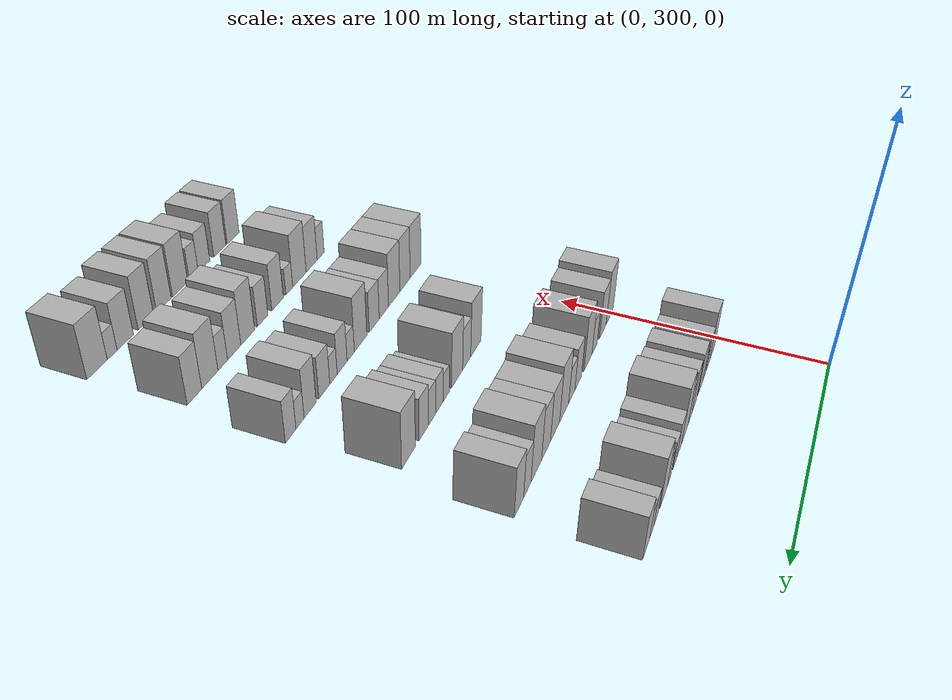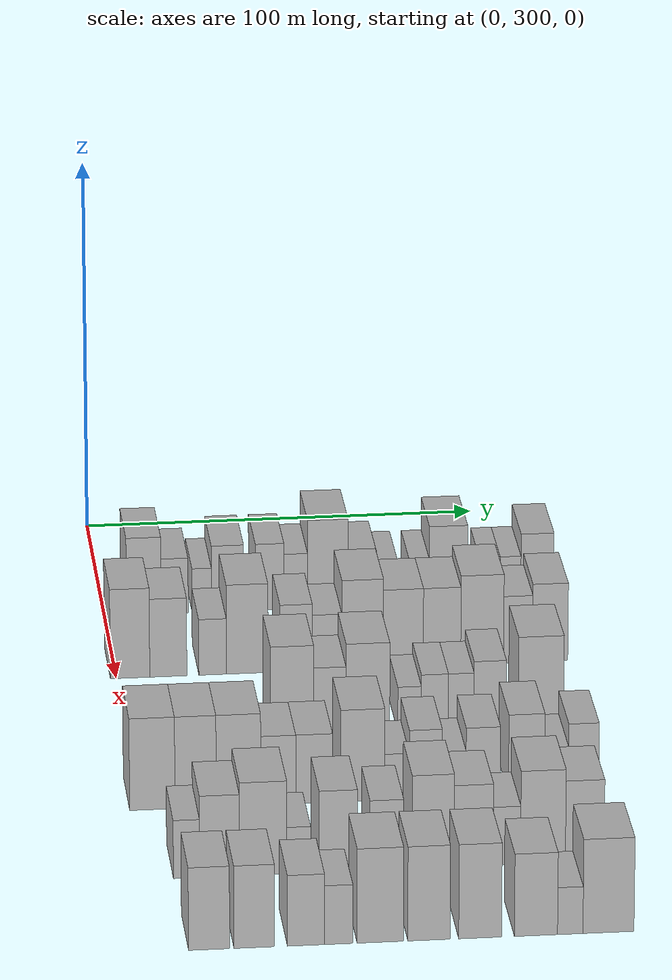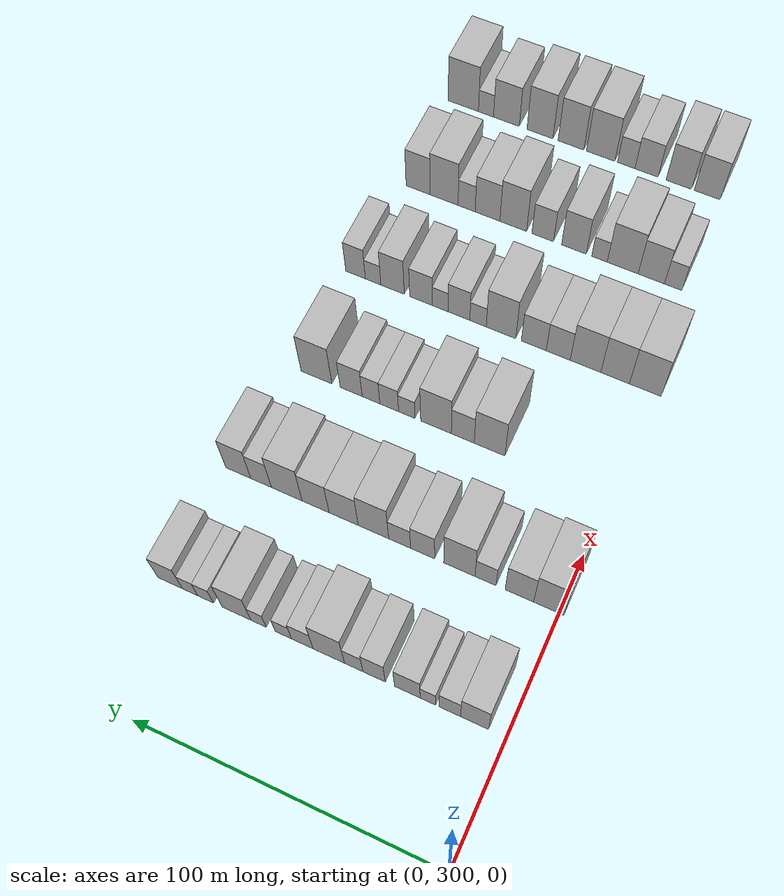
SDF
<sdf version="1.6">
 <world name="default">
  <model name="building_105">
   <static>1</static>
   <pose>50.0000 310.0076 0 0.000000 0.000000 0.000000</pose>
   <link name="link">
    <pose>0 0 10.50 0 0 0</pose>
    <collision name="collision"><geometry><box><size>20.0000 8.7764 21.0000</size></box></geometry></collision>
    <visual name="visual">
     <cast_shadows>0</cast_shadows>
     <geometry><box><size>20.0000 8.7764 21.0000</size></box></geometry>
     <material>
      <script>
       <uri>model://HANNAS_wall/materials/scripts</uri>
       <uri>model://HANNAS_wall/materials/textures</uri>
       <name>vrc/HANNAS_wall</name>
      </script>
     </material>
    </visual>
   </link>
  </model>
  <model name="building_106">
   <static>1</static>
   <pose>50.0000 317.8394 0 0.000000 0.000000 0.000000</pose>
   <link name="link">
    <pose>0 0 7.50 0 0 0</pose>
    <collision name="collision"><geometry><box><size>20.0000 6.8872 15.0000</size></box></geometry></collision>
    <visual name="visual">
     <cast_shadows>0</cast_shadows>
     <geometry><box><size>20.0000 6.8872 15.0000</size></box></geometry>
     <material>
      <script>
       <uri>model://HANNAS_wall/materials/scripts</uri>
       <uri>model://HANNAS_wall/materials/textures</uri>
       <name>vrc/HANNAS_wall</name>
      </script>
     </material>
    </visual>
   </link>
  </model>
  <model name="building_107">
   <static>1</static>
   <pose>50.0000 324.7450 0 0.000000 0.000000 0.000000</pose>
   <link name="link">
    <pose>0 0 6.00 0 0 0</pose>
    <collision name="collision"><geometry><box><size>20.0000 4.9238 12.0000</size></box></geometry></collision>
    <visual name="visual">
     <cast_shadows>0</cast_shadows>
     <geometry><box><size>20.0000 4.9238 12.0000</size></box></geometry>
     <material>
      <script>
       <uri>model://HANNAS_wall/materials/scripts</uri>
       <uri>model://HANNAS_wall/materials/textures</uri>
       <name>vrc/HANNAS_wall</name>
      </script>
     </material>
    </visual>
   </link>
  </model>
  <model name="building_108">
   <static>1</static>
   <pose>50.0000 331.3017 0 0.000000 0.000000 0.000000</pose>
   <link name="link">
    <pose>0 0 9.00 0 0 0</pose>
    <collision name="collision"><geometry><box><size>20.0000 8.1896 18.0000</size></box></geometry></collision>
    <visual name="visual">
     <cast_shadows>0</cast_shadows>
     <geometry><box><size>20.0000 8.1896 18.0000</size></box></geometry>
     <material>
      <script>
       <uri>model://HANNAS_wall/materials/scripts</uri>
       <uri>model://HANNAS_wall/materials/textures</uri>
       <name>vrc/HANNAS_wall</name>
      </script>
     </material>
    </visual>
   </link>
  </model>
  <model name="building_109">
   <static>1</static>
   <pose>50.0000 342.0063 0 0.000000 0.000000 0.000000</pose>
   <link name="link">
    <pose>0 0 9.00 0 0 0</pose>
    <collision name="collision"><geometry><box><size>20.0000 7.2196 18.0000</size></box></geometry></collision>
    <visual name="visual">
     <cast_shadows>0</cast_shadows>
     <geometry><box><size>20.0000 7.2196 18.0000</size></box></geometry>
     <material>
      <script>
       <uri>model://HANNAS_wall/materials/scripts</uri>
       <uri>model://HANNAS_wall/materials/textures</uri>
       <name>vrc/HANNAS_wall</name>
      </script>
     </material>
    </visual>
   </link>
  </model>
  <model name="building_110">
   <static>1</static>
   <pose>50.0000 348.6271 0 0.000000 0.000000 0.000000</pose>
   <link name="link">
    <pose>0 0 7.50 0 0 0</pose>
    <collision name="collision"><geometry><box><size>20.0000 6.0222 15.0000</size></box></geometry></collision>
    <visual name="visual">
     <cast_shadows>0</cast_shadows>
     <geometry><box><size>20.0000 6.0222 15.0000</size></box></geometry>
     <material>
      <script>
       <uri>model://HANNAS_wall/materials/scripts</uri>
       <uri>model://HANNAS_wall/materials/textures</uri>
       <name>vrc/HANNAS_wall</name>
      </script>
     </material>
    </visual>
   </link>
  </model>
  <model name="building_111">
   <static>1</static>
   <pose>50.0000 356.7832 0 0.000000 0.000000 0.000000</pose>
   <link name="link">
    <pose>0 0 12.00 0 0 0</pose>
    <collision name="collision"><geometry><box><size>20.0000 10.2899 24.0000</size></box></geometry></collision>
    <visual name="visual">
     <cast_shadows>0</cast_shadows>
     <geometry><box><size>20.0000 10.2899 24.0000</size></box></geometry>
     <material>
      <script>
       <uri>model://HANNAS_wall/materials/scripts</uri>
       <uri>model://HANNAS_wall/materials/textures</uri>
       <name>vrc/HANNAS_wall</name>
      </script>
     </material>
    </visual>
   </link>
  </model>
  <model name="building_112">
   <static>1</static>
   <pose>50.0000 365.5223 0 0.000000 0.000000 0.000000</pose>
   <link name="link">
    <pose>0 0 7.50 0 0 0</pose>
    <collision name="collision"><geometry><box><size>20.0000 7.1882 15.0000</size></box></geometry></collision>
    <visual name="visual">
     <cast_shadows>0</cast_shadows>
     <geometry><box><size>20.0000 7.1882 15.0000</size></box></geometry>
     <material>
      <script>
       <uri>model://HANNAS_wall/materials/scripts</uri>
       <uri>model://HANNAS_wall/materials/textures</uri>
       <name>vrc/HANNAS_wall</name>
      </script>
     </material>
    </visual>
   </link>
  </model>
  <model name="building_113">
   <static>1</static>
   <pose>50.0000 371.8301 0 0.000000 0.000000 0.000000</pose>
   <link name="link">
    <pose>0 0 6.00 0 0 0</pose>
    <collision name="collision"><geometry><box><size>20.0000 5.4275 12.0000</size></box></geometry></collision>
    <visual name="visual">
     <cast_shadows>0</cast_shadows>
     <geometry><box><size>20.0000 5.4275 12.0000</size></box></geometry>
     <material>
      <script>
       <uri>model://HANNAS_wall/materials/scripts</uri>
       <uri>model://HANNAS_wall/materials/textures</uri>
       <name>vrc/HANNAS_wall</name>
      </script>
     </material>
    </visual>
   </link>
  </model>
  <model name="building_114">
   <static>1</static>
   <pose>50.0000 380.0903 0 0.000000 0.000000 0.000000</pose>
   <link name="link">
    <pose>0 0 6.00 0 0 0</pose>
    <collision name="collision"><geometry><box><size>20.0000 5.0929 12.0000</size></box></geometry></collision>
    <visual name="visual">
     <cast_shadows>0</cast_shadows>
     <geometry><box><size>20.0000 5.0929 12.0000</size></box></geometry>
     <material>
      <script>
       <uri>model://HANNAS_wall/materials/scripts</uri>
       <uri>model://HANNAS_wall/materials/textures</uri>
       <name>vrc/HANNAS_wall</name>
      </script>
     </material>
    </visual>
   </link>
  </model>
  <model name="building_115">
   <static>1</static>
   <pose>50.0000 387.4964 0 0.000000 0.000000 0.000000</pose>
   <link name="link">
    <pose>0 0 10.50 0 0 0</pose>
    <collision name="collision"><geometry><box><size>20.0000 9.7192 21.0000</size></box></geometry></collision>
    <visual name="visual">
     <cast_shadows>0</cast_shadows>
     <geometry><box><size>20.0000 9.7192 21.0000</size></box></geometry>
     <material>
      <script>
       <uri>model://HANNAS_wall/materials/scripts</uri>
       <uri>model://HANNAS_wall/materials/textures</uri>
       <name>vrc/HANNAS_wall</name>
      </script>
     </material>
    </visual>
   </link>
  </model>
  <model name="building_116">
   <static>1</static>
   <pose>50.0000 398.0210 0 0.000000 0.000000 0.000000</pose>
   <link name="link">
    <pose>0 0 6.00 0 0 0</pose>
    <collision name="collision"><geometry><box><size>20.0000 5.3301 12.0000</size></box></geometry></collision>
    <visual name="visual">
     <cast_shadows>0</cast_shadows>
     <geometry><box><size>20.0000 5.3301 12.0000</size></box></geometry>
     <material>
      <script>
       <uri>model://HANNAS_wall/materials/scripts</uri>
       <uri>model://HANNAS_wall/materials/textures</uri>
       <name>vrc/HANNAS_wall</name>
      </script>
     </material>
    </visual>
   </link>
  </model>
  <model name="building_117">
   <static>1</static>
   <pose>50.0000 403.3405 0 0.000000 0.000000 0.000000</pose>
   <link name="link">
    <pose>0 0 6.00 0 0 0</pose>
    <collision name="collision"><geometry><box><size>20.0000 5.3088 12.0000</size></box></geometry></collision>
    <visual name="visual">
     <cast_shadows>0</cast_shadows>
     <geometry><box><size>20.0000 5.3088 12.0000</size></box></geometry>
     <material>
      <script>
       <uri>model://HANNAS_wall/materials/scripts</uri>
       <uri>model://HANNAS_wall/materials/textures</uri>
       <name>vrc/HANNAS_wall</name>
      </script>
     </material>
    </visual>
   </link>
  </model>
  <model name="building_118">
   <static>1</static>
   <pose>50.0000 410.1976 0 0.000000 0.000000 0.000000</pose>
   <link name="link">
    <pose>0 0 9.00 0 0 0</pose>
    <collision name="collision"><geometry><box><size>20.0000 8.4054 18.0000</size></box></geometry></collision>
    <visual name="visual">
     <cast_shadows>0</cast_shadows>
     <geometry><box><size>20.0000 8.4054 18.0000</size></box></geometry>
     <material>
      <script>
       <uri>model://HANNAS_wall/materials/scripts</uri>
       <uri>model://HANNAS_wall/materials/textures</uri>
       <name>vrc/HANNAS_wall</name>
      </script>
     </material>
    </visual>
   </link>
  </model>
  <model name="building_243">
   <static>1</static>
   <pose>90.0000 303.4104 0 0.000000 0.000000 0.000000</pose>
   <link name="link">
    <pose>0 0 12.00 0 0 0</pose>
    <collision name="collision"><geometry><box><size>20.0000 9.8261 24.0000</size></box></geometry></collision>
    <visual name="visual">
     <cast_shadows>0</cast_shadows>
     <geometry><box><size>20.0000 9.8261 24.0000</size></box></geometry>
     <material>
      <script>
       <uri>model://HANNAS_wall/materials/scripts</uri>
       <uri>model://HANNAS_wall/materials/textures</uri>
       <name>vrc/HANNAS_wall</name>
      </script>
     </material>
    </visual>
   </link>
  </model>
  <model name="building_244">
   <static>1</static>
   <pose>90.0000 312.9571 0 0.000000 0.000000 0.000000</pose>
   <link name="link">
    <pose>0 0 10.50 0 0 0</pose>
    <collision name="collision"><geometry><box><size>20.0000 9.2674 21.0000</size></box></geometry></collision>
    <visual name="visual">
     <cast_shadows>0</cast_shadows>
     <geometry><box><size>20.0000 9.2674 21.0000</size></box></geometry>
     <material>
      <script>
       <uri>model://HANNAS_wall/materials/scripts</uri>
       <uri>model://HANNAS_wall/materials/textures</uri>
       <name>vrc/HANNAS_wall</name>
      </script>
     </material>
    </visual>
   </link>
  </model>
  <model name="building_245">
   <static>1</static>
   <pose>90.0000 324.0343 0 0.000000 0.000000 0.000000</pose>
   <link name="link">
    <pose>0 0 7.50 0 0 0</pose>
    <collision name="collision"><geometry><box><size>20.0000 6.8872 15.0000</size></box></geometry></collision>
    <visual name="visual">
     <cast_shadows>0</cast_shadows>
     <geometry><box><size>20.0000 6.8872 15.0000</size></box></geometry>
     <material>
      <script>
       <uri>model://HANNAS_wall/materials/scripts</uri>
       <uri>model://HANNAS_wall/materials/textures</uri>
       <name>vrc/HANNAS_wall</name>
      </script>
     </material>
    </visual>
   </link>
  </model>
  <model name="building_246">
   <static>1</static>
   <pose>90.0000 332.6824 0 0.000000 0.000000 0.000000</pose>
   <link name="link">
    <pose>0 0 12.00 0 0 0</pose>
    <collision name="collision"><geometry><box><size>20.0000 10.4090 24.0000</size></box></geometry></collision>
    <visual name="visual">
     <cast_shadows>0</cast_shadows>
     <geometry><box><size>20.0000 10.4090 24.0000</size></box></geometry>
     <material>
      <script>
       <uri>model://HANNAS_wall/materials/scripts</uri>
       <uri>model://HANNAS_wall/materials/textures</uri>
       <name>vrc/HANNAS_wall</name>
      </script>
     </material>
    </visual>
   </link>
  </model>
  <model name="building_247">
   <static>1</static>
   <pose>90.0000 344.9197 0 0.000000 0.000000 0.000000</pose>
   <link name="link">
    <pose>0 0 9.00 0 0 0</pose>
    <collision name="collision"><geometry><box><size>20.0000 8.0655 18.0000</size></box></geometry></collision>
    <visual name="visual">
     <cast_shadows>0</cast_shadows>
     <geometry><box><size>20.0000 8.0655 18.0000</size></box></geometry>
     <material>
      <script>
       <uri>model://HANNAS_wall/materials/scripts</uri>
       <uri>model://HANNAS_wall/materials/textures</uri>
       <name>vrc/HANNAS_wall</name>
      </script>
     </material>
    </visual>
   </link>
  </model>
  <model name="building_248">
   <static>1</static>
   <pose>90.0000 352.6466 0 0.000000 0.000000 0.000000</pose>
   <link name="link">
    <pose>0 0 7.50 0 0 0</pose>
    <collision name="collision"><geometry><box><size>20.0000 7.3883 15.0000</size></box></geometry></collision>
    <visual name="visual">
     <cast_shadows>0</cast_shadows>
     <geometry><box><size>20.0000 7.3883 15.0000</size></box></geometry>
     <material>
      <script>
       <uri>model://HANNAS_wall/materials/scripts</uri>
       <uri>model://HANNAS_wall/materials/textures</uri>
       <name>vrc/HANNAS_wall</name>
      </script>
     </material>
    </visual>
   </link>
  </model>
  <model name="building_249">
   <static>1</static>
   <pose>90.0000 361.5470 0 0.000000 0.000000 0.000000</pose>
   <link name="link">
    <pose>0 0 12.00 0 0 0</pose>
    <collision name="collision"><geometry><box><size>20.0000 10.4123 24.0000</size></box></geometry></collision>
    <visual name="visual">
     <cast_shadows>0</cast_shadows>
     <geometry><box><size>20.0000 10.4123 24.0000</size></box></geometry>
     <material>
      <script>
       <uri>model://HANNAS_wall/materials/scripts</uri>
       <uri>model://HANNAS_wall/materials/textures</uri>
       <name>vrc/HANNAS_wall</name>
      </script>
     </material>
    </visual>
   </link>
  </model>
  <model name="building_250">
   <static>1</static>
   <pose>90.0000 371.7536 0 0.000000 0.000000 0.000000</pose>
   <link name="link">
    <pose>0 0 10.50 0 0 0</pose>
    <collision name="collision"><geometry><box><size>20.0000 10.0010 21.0000</size></box></geometry></collision>
    <visual name="visual">
     <cast_shadows>0</cast_shadows>
     <geometry><box><size>20.0000 10.0010 21.0000</size></box></geometry>
     <material>
      <script>
       <uri>model://HANNAS_wall/materials/scripts</uri>
       <uri>model://HANNAS_wall/materials/textures</uri>
       <name>vrc/HANNAS_wall</name>
      </script>
     </material>
    </visual>
   </link>
  </model>
  <model name="building_251">
   <static>1</static>
   <pose>90.0000 381.4394 0 0.000000 0.000000 0.000000</pose>
   <link name="link">
    <pose>0 0 10.50 0 0 0</pose>
    <collision name="collision"><geometry><box><size>20.0000 9.3705 21.0000</size></box></geometry></collision>
    <visual name="visual">
     <cast_shadows>0</cast_shadows>
     <geometry><box><size>20.0000 9.3705 21.0000</size></box></geometry>
     <material>
      <script>
       <uri>model://HANNAS_wall/materials/scripts</uri>
       <uri>model://HANNAS_wall/materials/textures</uri>
       <name>vrc/HANNAS_wall</name>
      </script>
     </material>
    </visual>
   </link>
  </model>
  <model name="building_252">
   <static>1</static>
   <pose>90.0000 391.5089 0 0.000000 0.000000 0.000000</pose>
   <link name="link">
    <pose>0 0 12.00 0 0 0</pose>
    <collision name="collision"><geometry><box><size>20.0000 10.7685 24.0000</size></box></geometry></collision>
    <visual name="visual">
     <cast_shadows>0</cast_shadows>
     <geometry><box><size>20.0000 10.7685 24.0000</size></box></geometry>
     <material>
      <script>
       <uri>model://HANNAS_wall/materials/scripts</uri>
       <uri>model://HANNAS_wall/materials/textures</uri>
       <name>vrc/HANNAS_wall</name>
      </script>
     </material>
    </visual>
   </link>
  </model>
  <model name="building_253">
   <static>1</static>
   <pose>90.0000 400.5280 0 0.000000 0.000000 0.000000</pose>
   <link name="link">
    <pose>0 0 9.00 0 0 0</pose>
    <collision name="collision"><geometry><box><size>20.0000 7.2698 18.0000</size></box></geometry></collision>
    <visual name="visual">
     <cast_shadows>0</cast_shadows>
     <geometry><box><size>20.0000 7.2698 18.0000</size></box></geometry>
     <material>
      <script>
       <uri>model://HANNAS_wall/materials/scripts</uri>
       <uri>model://HANNAS_wall/materials/textures</uri>
       <name>vrc/HANNAS_wall</name>
      </script>
     </material>
    </visual>
   </link>
  </model>
  <model name="building_254">
   <static>1</static>
   <pose>90.0000 408.5929 0 0.000000 0.000000 0.000000</pose>
   <link name="link">
    <pose>0 0 10.50 0 0 0</pose>
    <collision name="collision"><geometry><box><size>20.0000 8.8600 21.0000</size></box></geometry></collision>
    <visual name="visual">
     <cast_shadows>0</cast_shadows>
     <geometry><box><size>20.0000 8.8600 21.0000</size></box></geometry>
     <material>
      <script>
       <uri>model://HANNAS_wall/materials/scripts</uri>
       <uri>model://HANNAS_wall/materials/textures</uri>
       <name>vrc/HANNAS_wall</name>
      </script>
     </material>
    </visual>
   </link>
  </model>
  <model name="building_382">
   <static>1</static>
   <pose>130.0000 340.0986 0 0.000000 0.000000 0.000000</pose>
   <link name="link">
    <pose>0 0 12.00 0 0 0</pose>
    <collision name="collision"><geometry><box><size>20.0000 10.5979 24.0000</size></box></geometry></collision>
    <visual name="visual">
     <cast_shadows>0</cast_shadows>
     <geometry><box><size>20.0000 10.5979 24.0000</size></box></geometry>
     <material>
      <script>
       <uri>model://HANNAS_wall/materials/scripts</uri>
       <uri>model://HANNAS_wall/materials/textures</uri>
       <name>vrc/HANNAS_wall</name>
      </script>
     </material>
    </visual>
   </link>
  </model>
  <model name="building_383">
   <static>1</static>
   <pose>130.0000 349.3764 0 0.000000 0.000000 0.000000</pose>
   <link name="link">
    <pose>0 0 9.00 0 0 0</pose>
    <collision name="collision"><geometry><box><size>20.0000 7.9577 18.0000</size></box></geometry></collision>
    <visual name="visual">
     <cast_shadows>0</cast_shadows>
     <geometry><box><size>20.0000 7.9577 18.0000</size></box></geometry>
     <material>
      <script>
       <uri>model://HANNAS_wall/materials/scripts</uri>
       <uri>model://HANNAS_wall/materials/textures</uri>
       <name>vrc/HANNAS_wall</name>
      </script>
     </material>
    </visual>
   </link>
  </model>
  <model name="building_384">
   <static>1</static>
   <pose>130.0000 358.7235 0 0.000000 0.000000 0.000000</pose>
   <link name="link">
    <pose>0 0 12.00 0 0 0</pose>
    <collision name="collision"><geometry><box><size>20.0000 10.7365 24.0000</size></box></geometry></collision>
    <visual name="visual">
     <cast_shadows>0</cast_shadows>
     <geometry><box><size>20.0000 10.7365 24.0000</size></box></geometry>
     <material>
      <script>
       <uri>model://HANNAS_wall/materials/scripts</uri>
       <uri>model://HANNAS_wall/materials/textures</uri>
       <name>vrc/HANNAS_wall</name>
      </script>
     </material>
    </visual>
   </link>
  </model>
  <model name="building_385">
   <static>1</static>
   <pose>130.0000 368.9908 0 0.000000 0.000000 0.000000</pose>
   <link name="link">
    <pose>0 0 6.00 0 0 0</pose>
    <collision name="collision"><geometry><box><size>20.0000 5.7982 12.0000</size></box></geometry></collision>
    <visual name="visual">
     <cast_shadows>0</cast_shadows>
     <geometry><box><size>20.0000 5.7982 12.0000</size></box></geometry>
     <material>
      <script>
       <uri>model://HANNAS_wall/materials/scripts</uri>
       <uri>model://HANNAS_wall/materials/textures</uri>
       <name>vrc/HANNAS_wall</name>
      </script>
     </material>
    </visual>
   </link>
  </model>
  <model name="building_386">
   <static>1</static>
   <pose>130.0000 375.2227 0 0.000000 0.000000 0.000000</pose>
   <link name="link">
    <pose>0 0 7.50 0 0 0</pose>
    <collision name="collision"><geometry><box><size>20.0000 6.6657 15.0000</size></box></geometry></collision>
    <visual name="visual">
     <cast_shadows>0</cast_shadows>
     <geometry><box><size>20.0000 6.6657 15.0000</size></box></geometry>
     <material>
      <script>
       <uri>model://HANNAS_wall/materials/scripts</uri>
       <uri>model://HANNAS_wall/materials/textures</uri>
       <name>vrc/HANNAS_wall</name>
      </script>
     </material>
    </visual>
   </link>
  </model>
  <model name="building_387">
   <static>1</static>
   <pose>130.0000 381.7059 0 0.000000 0.000000 0.000000</pose>
   <link name="link">
    <pose>0 0 7.50 0 0 0</pose>
    <collision name="collision"><geometry><box><size>20.0000 6.3007 15.0000</size></box></geometry></collision>
    <visual name="visual">
     <cast_shadows>0</cast_shadows>
     <geometry><box><size>20.0000 6.3007 15.0000</size></box></geometry>
     <material>
      <script>
       <uri>model://HANNAS_wall/materials/scripts</uri>
       <uri>model://HANNAS_wall/materials/textures</uri>
       <name>vrc/HANNAS_wall</name>
      </script>
     </material>
    </visual>
   </link>
  </model>
  <model name="building_388">
   <static>1</static>
   <pose>130.0000 388.8208 0 0.000000 0.000000 0.000000</pose>
   <link name="link">
    <pose>0 0 9.00 0 0 0</pose>
    <collision name="collision"><geometry><box><size>20.0000 7.9292 18.0000</size></box></geometry></collision>
    <visual name="visual">
     <cast_shadows>0</cast_shadows>
     <geometry><box><size>20.0000 7.9292 18.0000</size></box></geometry>
     <material>
      <script>
       <uri>model://HANNAS_wall/materials/scripts</uri>
       <uri>model://HANNAS_wall/materials/textures</uri>
       <name>vrc/HANNAS_wall</name>
      </script>
     </material>
    </visual>
   </link>
  </model>
  <model name="building_389">
   <static>1</static>
   <pose>130.0000 401.3830 0 0.000000 0.000000 0.000000</pose>
   <link name="link">
    <pose>0 0 12.00 0 0 0</pose>
    <collision name="collision"><geometry><box><size>20.0000 11.1950 24.0000</size></box></geometry></collision>
    <visual name="visual">
     <cast_shadows>0</cast_shadows>
     <geometry><box><size>20.0000 11.1950 24.0000</size></box></geometry>
     <material>
      <script>
       <uri>model://HANNAS_wall/materials/scripts</uri>
       <uri>model://HANNAS_wall/materials/textures</uri>
       <name>vrc/HANNAS_wall</name>
      </script>
     </material>
    </visual>
   </link>
  </model>
  <model name="building_510">
   <static>1</static>
   <pose>170.0000 302.5826 0 0.000000 0.000000 0.000000</pose>
   <link name="link">
    <pose>0 0 12.00 0 0 0</pose>
    <collision name="collision"><geometry><box><size>20.0000 10.9187 24.0000</size></box></geometry></collision>
    <visual name="visual">
     <cast_shadows>0</cast_shadows>
     <geometry><box><size>20.0000 10.9187 24.0000</size></box></geometry>
     <material>
      <script>
       <uri>model://HANNAS_wall/materials/scripts</uri>
       <uri>model://HANNAS_wall/materials/textures</uri>
       <name>vrc/HANNAS_wall</name>
      </script>
     </material>
    </visual>
   </link>
  </model>
  <model name="building_511">
   <static>1</static>
   <pose>170.0000 313.0116 0 0.000000 0.000000 0.000000</pose>
   <link name="link">
    <pose>0 0 12.00 0 0 0</pose>
    <collision name="collision"><geometry><box><size>20.0000 9.9392 24.0000</size></box></geometry></collision>
    <visual name="visual">
     <cast_shadows>0</cast_shadows>
     <geometry><box><size>20.0000 9.9392 24.0000</size></box></geometry>
     <material>
      <script>
       <uri>model://HANNAS_wall/materials/scripts</uri>
       <uri>model://HANNAS_wall/materials/textures</uri>
       <name>vrc/HANNAS_wall</name>
      </script>
     </material>
    </visual>
   </link>
  </model>
  <model name="building_512">
   <static>1</static>
   <pose>170.0000 323.3538 0 0.000000 0.000000 0.000000</pose>
   <link name="link">
    <pose>0 0 12.00 0 0 0</pose>
    <collision name="collision"><geometry><box><size>20.0000 10.7452 24.0000</size></box></geometry></collision>
    <visual name="visual">
     <cast_shadows>0</cast_shadows>
     <geometry><box><size>20.0000 10.7452 24.0000</size></box></geometry>
     <material>
      <script>
       <uri>model://HANNAS_wall/materials/scripts</uri>
       <uri>model://HANNAS_wall/materials/textures</uri>
       <name>vrc/HANNAS_wall</name>
      </script>
     </material>
    </visual>
   </link>
  </model>
  <model name="building_513">
   <static>1</static>
   <pose>170.0000 332.9614 0 0.000000 0.000000 0.000000</pose>
   <link name="link">
    <pose>0 0 9.00 0 0 0</pose>
    <collision name="collision"><geometry><box><size>20.0000 8.4700 18.0000</size></box></geometry></collision>
    <visual name="visual">
     <cast_shadows>0</cast_shadows>
     <geometry><box><size>20.0000 8.4700 18.0000</size></box></geometry>
     <material>
      <script>
       <uri>model://HANNAS_wall/materials/scripts</uri>
       <uri>model://HANNAS_wall/materials/textures</uri>
       <name>vrc/HANNAS_wall</name>
      </script>
     </material>
    </visual>
   </link>
  </model>
  <model name="building_514">
   <static>1</static>
   <pose>170.0000 341.6275 0 0.000000 0.000000 0.000000</pose>
   <link name="link">
    <pose>0 0 9.00 0 0 0</pose>
    <collision name="collision"><geometry><box><size>20.0000 8.8622 18.0000</size></box></geometry></collision>
    <visual name="visual">
     <cast_shadows>0</cast_shadows>
     <geometry><box><size>20.0000 8.8622 18.0000</size></box></geometry>
     <material>
      <script>
       <uri>model://HANNAS_wall/materials/scripts</uri>
       <uri>model://HANNAS_wall/materials/textures</uri>
       <name>vrc/HANNAS_wall</name>
      </script>
     </material>
    </visual>
   </link>
  </model>
  <model name="building_515">
   <static>1</static>
   <pose>170.0000 353.3717 0 0.000000 0.000000 0.000000</pose>
   <link name="link">
    <pose>0 0 12.00 0 0 0</pose>
    <collision name="collision"><geometry><box><size>20.0000 10.6263 24.0000</size></box></geometry></collision>
    <visual name="visual">
     <cast_shadows>0</cast_shadows>
     <geometry><box><size>20.0000 10.6263 24.0000</size></box></geometry>
     <material>
      <script>
       <uri>model://HANNAS_wall/materials/scripts</uri>
       <uri>model://HANNAS_wall/materials/textures</uri>
       <name>vrc/HANNAS_wall</name>
      </script>
     </material>
    </visual>
   </link>
  </model>
  <model name="building_516">
   <static>1</static>
   <pose>170.0000 361.6533 0 0.000000 0.000000 0.000000</pose>
   <link name="link">
    <pose>0 0 6.00 0 0 0</pose>
    <collision name="collision"><geometry><box><size>20.0000 5.9369 12.0000</size></box></geometry></collision>
    <visual name="visual">
     <cast_shadows>0</cast_shadows>
     <geometry><box><size>20.0000 5.9369 12.0000</size></box></geometry>
     <material>
      <script>
       <uri>model://HANNAS_wall/materials/scripts</uri>
       <uri>model://HANNAS_wall/materials/textures</uri>
       <name>vrc/HANNAS_wall</name>
      </script>
     </material>
    </visual>
   </link>
  </model>
  <model name="building_517">
   <static>1</static>
   <pose>170.0000 368.5999 0 0.000000 0.000000 0.000000</pose>
   <link name="link">
    <pose>0 0 9.00 0 0 0</pose>
    <collision name="collision"><geometry><box><size>20.0000 7.9563 18.0000</size></box></geometry></collision>
    <visual name="visual">
     <cast_shadows>0</cast_shadows>
     <geometry><box><size>20.0000 7.9563 18.0000</size></box></geometry>
     <material>
      <script>
       <uri>model://HANNAS_wall/materials/scripts</uri>
       <uri>model://HANNAS_wall/materials/textures</uri>
       <name>vrc/HANNAS_wall</name>
      </script>
     </material>
    </visual>
   </link>
  </model>
  <model name="building_518">
   <static>1</static>
   <pose>170.0000 375.4586 0 0.000000 0.000000 0.000000</pose>
   <link name="link">
    <pose>0 0 6.00 0 0 0</pose>
    <collision name="collision"><geometry><box><size>20.0000 5.7613 12.0000</size></box></geometry></collision>
    <visual name="visual">
     <cast_shadows>0</cast_shadows>
     <geometry><box><size>20.0000 5.7613 12.0000</size></box></geometry>
     <material>
      <script>
       <uri>model://HANNAS_wall/materials/scripts</uri>
       <uri>model://HANNAS_wall/materials/textures</uri>
       <name>vrc/HANNAS_wall</name>
      </script>
     </material>
    </visual>
   </link>
  </model>
  <model name="building_519">
   <static>1</static>
   <pose>170.0000 382.5002 0 0.000000 0.000000 0.000000</pose>
   <link name="link">
    <pose>0 0 9.00 0 0 0</pose>
    <collision name="collision"><geometry><box><size>20.0000 8.3217 18.0000</size></box></geometry></collision>
    <visual name="visual">
     <cast_shadows>0</cast_shadows>
     <geometry><box><size>20.0000 8.3217 18.0000</size></box></geometry>
     <material>
      <script>
       <uri>model://HANNAS_wall/materials/scripts</uri>
       <uri>model://HANNAS_wall/materials/textures</uri>
       <name>vrc/HANNAS_wall</name>
      </script>
     </material>
    </visual>
   </link>
  </model>
  <model name="building_520">
   <static>1</static>
   <pose>170.0000 393.0248 0 0.000000 0.000000 0.000000</pose>
   <link name="link">
    <pose>0 0 10.50 0 0 0</pose>
    <collision name="collision"><geometry><box><size>20.0000 8.7276 21.0000</size></box></geometry></collision>
    <visual name="visual">
     <cast_shadows>0</cast_shadows>
     <geometry><box><size>20.0000 8.7276 21.0000</size></box></geometry>
     <material>
      <script>
       <uri>model://HANNAS_wall/materials/scripts</uri>
       <uri>model://HANNAS_wall/materials/textures</uri>
       <name>vrc/HANNAS_wall</name>
      </script>
     </material>
    </visual>
   </link>
  </model>
  <model name="building_521">
   <static>1</static>
   <pose>170.0000 400.2830 0 0.000000 0.000000 0.000000</pose>
   <link name="link">
    <pose>0 0 6.00 0 0 0</pose>
    <collision name="collision"><geometry><box><size>20.0000 5.7888 12.0000</size></box></geometry></collision>
    <visual name="visual">
     <cast_shadows>0</cast_shadows>
     <geometry><box><size>20.0000 5.7888 12.0000</size></box></geometry>
     <material>
      <script>
       <uri>model://HANNAS_wall/materials/scripts</uri>
       <uri>model://HANNAS_wall/materials/textures</uri>
       <name>vrc/HANNAS_wall</name>
      </script>
     </material>
    </visual>
   </link>
  </model>
  <model name="building_522">
   <static>1</static>
   <pose>170.0000 406.8608 0 0.000000 0.000000 0.000000</pose>
   <link name="link">
    <pose>0 0 9.00 0 0 0</pose>
    <collision name="collision"><geometry><box><size>20.0000 7.3667 18.0000</size></box></geometry></collision>
    <visual name="visual">
     <cast_shadows>0</cast_shadows>
     <geometry><box><size>20.0000 7.3667 18.0000</size></box></geometry>
     <material>
      <script>
       <uri>model://HANNAS_wall/materials/scripts</uri>
       <uri>model://HANNAS_wall/materials/textures</uri>
       <name>vrc/HANNAS_wall</name>
      </script>
     </material>
    </visual>
   </link>
  </model>
  <model name="building_647">
   <static>1</static>
   <pose>210.0000 307.4767 0 0.000000 0.000000 0.000000</pose>
   <link name="link">
    <pose>0 0 7.50 0 0 0</pose>
    <collision name="collision"><geometry><box><size>20.0000 6.2191 15.0000</size></box></geometry></collision>
    <visual name="visual">
     <cast_shadows>0</cast_shadows>
     <geometry><box><size>20.0000 6.2191 15.0000</size></box></geometry>
     <material>
      <script>
       <uri>model://HANNAS_wall/materials/scripts</uri>
       <uri>model://HANNAS_wall/materials/textures</uri>
       <name>vrc/HANNAS_wall</name>
      </script>
     </material>
    </visual>
   </link>
  </model>
  <model name="building_648">
   <static>1</static>
   <pose>210.0000 315.3149 0 0.000000 0.000000 0.000000</pose>
   <link name="link">
    <pose>0 0 10.50 0 0 0</pose>
    <collision name="collision"><geometry><box><size>20.0000 9.4573 21.0000</size></box></geometry></collision>
    <visual name="visual">
     <cast_shadows>0</cast_shadows>
     <geometry><box><size>20.0000 9.4573 21.0000</size></box></geometry>
     <material>
      <script>
       <uri>model://HANNAS_wall/materials/scripts</uri>
       <uri>model://HANNAS_wall/materials/textures</uri>
       <name>vrc/HANNAS_wall</name>
      </script>
     </material>
    </visual>
   </link>
  </model>
  <model name="building_649">
   <static>1</static>
   <pose>210.0000 325.6474 0 0.000000 0.000000 0.000000</pose>
   <link name="link">
    <pose>0 0 12.00 0 0 0</pose>
    <collision name="collision"><geometry><box><size>20.0000 11.2077 24.0000</size></box></geometry></collision>
    <visual name="visual">
     <cast_shadows>0</cast_shadows>
     <geometry><box><size>20.0000 11.2077 24.0000</size></box></geometry>
     <material>
      <script>
       <uri>model://HANNAS_wall/materials/scripts</uri>
       <uri>model://HANNAS_wall/materials/textures</uri>
       <name>vrc/HANNAS_wall</name>
      </script>
     </material>
    </visual>
   </link>
  </model>
  <model name="building_650">
   <static>1</static>
   <pose>210.0000 334.0783 0 0.000000 0.000000 0.000000</pose>
   <link name="link">
    <pose>0 0 6.00 0 0 0</pose>
    <collision name="collision"><geometry><box><size>20.0000 5.6540 12.0000</size></box></geometry></collision>
    <visual name="visual">
     <cast_shadows>0</cast_shadows>
     <geometry><box><size>20.0000 5.6540 12.0000</size></box></geometry>
     <material>
      <script>
       <uri>model://HANNAS_wall/materials/scripts</uri>
       <uri>model://HANNAS_wall/materials/textures</uri>
       <name>vrc/HANNAS_wall</name>
      </script>
     </material>
    </visual>
   </link>
  </model>
  <model name="building_651">
   <static>1</static>
   <pose>210.0000 343.4384 0 0.000000 0.000000 0.000000</pose>
   <link name="link">
    <pose>0 0 10.50 0 0 0</pose>
    <collision name="collision"><geometry><box><size>20.0000 9.0662 21.0000</size></box></geometry></collision>
    <visual name="visual">
     <cast_shadows>0</cast_shadows>
     <geometry><box><size>20.0000 9.0662 21.0000</size></box></geometry>
     <material>
      <script>
       <uri>model://HANNAS_wall/materials/scripts</uri>
       <uri>model://HANNAS_wall/materials/textures</uri>
       <name>vrc/HANNAS_wall</name>
      </script>
     </material>
    </visual>
   </link>
  </model>
  <model name="building_652">
   <static>1</static>
   <pose>210.0000 354.9693 0 0.000000 0.000000 0.000000</pose>
   <link name="link">
    <pose>0 0 9.00 0 0 0</pose>
    <collision name="collision"><geometry><box><size>20.0000 7.9957 18.0000</size></box></geometry></collision>
    <visual name="visual">
     <cast_shadows>0</cast_shadows>
     <geometry><box><size>20.0000 7.9957 18.0000</size></box></geometry>
     <material>
      <script>
       <uri>model://HANNAS_wall/materials/scripts</uri>
       <uri>model://HANNAS_wall/materials/textures</uri>
       <name>vrc/HANNAS_wall</name>
      </script>
     </material>
    </visual>
   </link>
  </model>
  <model name="building_653">
   <static>1</static>
   <pose>210.0000 365.9711 0 0.000000 0.000000 0.000000</pose>
   <link name="link">
    <pose>0 0 12.00 0 0 0</pose>
    <collision name="collision"><geometry><box><size>20.0000 10.0078 24.0000</size></box></geometry></collision>
    <visual name="visual">
     <cast_shadows>0</cast_shadows>
     <geometry><box><size>20.0000 10.0078 24.0000</size></box></geometry>
     <material>
      <script>
       <uri>model://HANNAS_wall/materials/scripts</uri>
       <uri>model://HANNAS_wall/materials/textures</uri>
       <name>vrc/HANNAS_wall</name>
      </script>
     </material>
    </visual>
   </link>
  </model>
  <model name="building_654">
   <static>1</static>
   <pose>210.0000 375.6378 0 0.000000 0.000000 0.000000</pose>
   <link name="link">
    <pose>0 0 10.50 0 0 0</pose>
    <collision name="collision"><geometry><box><size>20.0000 9.3256 21.0000</size></box></geometry></collision>
    <visual name="visual">
     <cast_shadows>0</cast_shadows>
     <geometry><box><size>20.0000 9.3256 21.0000</size></box></geometry>
     <material>
      <script>
       <uri>model://HANNAS_wall/materials/scripts</uri>
       <uri>model://HANNAS_wall/materials/textures</uri>
       <name>vrc/HANNAS_wall</name>
      </script>
     </material>
    </visual>
   </link>
  </model>
  <model name="building_655">
   <static>1</static>
   <pose>210.0000 383.5480 0 0.000000 0.000000 0.000000</pose>
   <link name="link">
    <pose>0 0 7.50 0 0 0</pose>
    <collision name="collision"><geometry><box><size>20.0000 6.4950 15.0000</size></box></geometry></collision>
    <visual name="visual">
     <cast_shadows>0</cast_shadows>
     <geometry><box><size>20.0000 6.4950 15.0000</size></box></geometry>
     <material>
      <script>
       <uri>model://HANNAS_wall/materials/scripts</uri>
       <uri>model://HANNAS_wall/materials/textures</uri>
       <name>vrc/HANNAS_wall</name>
      </script>
     </material>
    </visual>
   </link>
  </model>
  <model name="building_656">
   <static>1</static>
   <pose>210.0000 392.1427 0 0.000000 0.000000 0.000000</pose>
   <link name="link">
    <pose>0 0 12.00 0 0 0</pose>
    <collision name="collision"><geometry><box><size>20.0000 10.6942 24.0000</size></box></geometry></collision>
    <visual name="visual">
     <cast_shadows>0</cast_shadows>
     <geometry><box><size>20.0000 10.6942 24.0000</size></box></geometry>
     <material>
      <script>
       <uri>model://HANNAS_wall/materials/scripts</uri>
       <uri>model://HANNAS_wall/materials/textures</uri>
       <name>vrc/HANNAS_wall</name>
      </script>
     </material>
    </visual>
   </link>
  </model>
  <model name="building_657">
   <static>1</static>
   <pose>210.0000 402.1081 0 0.000000 0.000000 0.000000</pose>
   <link name="link">
    <pose>0 0 10.50 0 0 0</pose>
    <collision name="collision"><geometry><box><size>20.0000 9.2366 21.0000</size></box></geometry></collision>
    <visual name="visual">
     <cast_shadows>0</cast_shadows>
     <geometry><box><size>20.0000 9.2366 21.0000</size></box></geometry>
     <material>
      <script>
       <uri>model://HANNAS_wall/materials/scripts</uri>
       <uri>model://HANNAS_wall/materials/textures</uri>
       <name>vrc/HANNAS_wall</name>
      </script>
     </material>
    </visual>
   </link>
  </model>
  <model name="building_789">
   <static>1</static>
   <pose>250.0000 309.3646 0 0.000000 0.000000 0.000000</pose>
   <link name="link">
    <pose>0 0 10.50 0 0 0</pose>
    <collision name="collision"><geometry><box><size>20.0000 9.5679 21.0000</size></box></geometry></collision>
    <visual name="visual">
     <cast_shadows>0</cast_shadows>
     <geometry><box><size>20.0000 9.5679 21.0000</size></box></geometry>
     <material>
      <script>
       <uri>model://HANNAS_wall/materials/scripts</uri>
       <uri>model://HANNAS_wall/materials/textures</uri>
       <name>vrc/HANNAS_wall</name>
      </script>
     </material>
    </visual>
   </link>
  </model>
  <model name="building_790">
   <static>1</static>
   <pose>250.0000 319.8712 0 0.000000 0.000000 0.000000</pose>
   <link name="link">
    <pose>0 0 10.50 0 0 0</pose>
    <collision name="collision"><geometry><box><size>20.0000 9.4451 21.0000</size></box></geometry></collision>
    <visual name="visual">
     <cast_shadows>0</cast_shadows>
     <geometry><box><size>20.0000 9.4451 21.0000</size></box></geometry>
     <material>
      <script>
       <uri>model://HANNAS_wall/materials/scripts</uri>
       <uri>model://HANNAS_wall/materials/textures</uri>
       <name>vrc/HANNAS_wall</name>
      </script>
     </material>
    </visual>
   </link>
  </model>
  <model name="building_791">
   <static>1</static>
   <pose>250.0000 331.9249 0 0.000000 0.000000 0.000000</pose>
   <link name="link">
    <pose>0 0 9.00 0 0 0</pose>
    <collision name="collision"><geometry><box><size>20.0000 8.6624 18.0000</size></box></geometry></collision>
    <visual name="visual">
     <cast_shadows>0</cast_shadows>
     <geometry><box><size>20.0000 8.6624 18.0000</size></box></geometry>
     <material>
      <script>
       <uri>model://HANNAS_wall/materials/scripts</uri>
       <uri>model://HANNAS_wall/materials/textures</uri>
       <name>vrc/HANNAS_wall</name>
      </script>
     </material>
    </visual>
   </link>
  </model>
  <model name="building_792">
   <static>1</static>
   <pose>250.0000 339.5475 0 0.000000 0.000000 0.000000</pose>
   <link name="link">
    <pose>0 0 7.50 0 0 0</pose>
    <collision name="collision"><geometry><box><size>20.0000 6.5827 15.0000</size></box></geometry></collision>
    <visual name="visual">
     <cast_shadows>0</cast_shadows>
     <geometry><box><size>20.0000 6.5827 15.0000</size></box></geometry>
     <material>
      <script>
       <uri>model://HANNAS_wall/materials/scripts</uri>
       <uri>model://HANNAS_wall/materials/textures</uri>
       <name>vrc/HANNAS_wall</name>
      </script>
     </material>
    </visual>
   </link>
  </model>
  <model name="building_793">
   <static>1</static>
   <pose>250.0000 349.2487 0 0.000000 0.000000 0.000000</pose>
   <link name="link">
    <pose>0 0 12.00 0 0 0</pose>
    <collision name="collision"><geometry><box><size>20.0000 10.8197 24.0000</size></box></geometry></collision>
    <visual name="visual">
     <cast_shadows>0</cast_shadows>
     <geometry><box><size>20.0000 10.8197 24.0000</size></box></geometry>
     <material>
      <script>
       <uri>model://HANNAS_wall/materials/scripts</uri>
       <uri>model://HANNAS_wall/materials/textures</uri>
       <name>vrc/HANNAS_wall</name>
      </script>
     </material>
    </visual>
   </link>
  </model>
  <model name="building_794">
   <static>1</static>
   <pose>250.0000 360.6030 0 0.000000 0.000000 0.000000</pose>
   <link name="link">
    <pose>0 0 12.00 0 0 0</pose>
    <collision name="collision"><geometry><box><size>20.0000 9.8890 24.0000</size></box></geometry></collision>
    <visual name="visual">
     <cast_shadows>0</cast_shadows>
     <geometry><box><size>20.0000 9.8890 24.0000</size></box></geometry>
     <material>
      <script>
       <uri>model://HANNAS_wall/materials/scripts</uri>
       <uri>model://HANNAS_wall/materials/textures</uri>
       <name>vrc/HANNAS_wall</name>
      </script>
     </material>
    </visual>
   </link>
  </model>
  <model name="building_795">
   <static>1</static>
   <pose>250.0000 372.5624 0 0.000000 0.000000 0.000000</pose>
   <link name="link">
    <pose>0 0 12.00 0 0 0</pose>
    <collision name="collision"><geometry><box><size>20.0000 10.0296 24.0000</size></box></geometry></collision>
    <visual name="visual">
     <cast_shadows>0</cast_shadows>
     <geometry><box><size>20.0000 10.0296 24.0000</size></box></geometry>
     <material>
      <script>
       <uri>model://HANNAS_wall/materials/scripts</uri>
       <uri>model://HANNAS_wall/materials/textures</uri>
       <name>vrc/HANNAS_wall</name>
      </script>
     </material>
    </visual>
   </link>
  </model>
  <model name="building_796">
   <static>1</static>
   <pose>250.0000 385.6231 0 0.000000 0.000000 0.000000</pose>
   <link name="link">
    <pose>0 0 10.50 0 0 0</pose>
    <collision name="collision"><geometry><box><size>20.0000 10.0920 21.0000</size></box></geometry></collision>
    <visual name="visual">
     <cast_shadows>0</cast_shadows>
     <geometry><box><size>20.0000 10.0920 21.0000</size></box></geometry>
     <material>
      <script>
       <uri>model://HANNAS_wall/materials/scripts</uri>
       <uri>model://HANNAS_wall/materials/textures</uri>
       <name>vrc/HANNAS_wall</name>
      </script>
     </material>
    </visual>
   </link>
  </model>
  <model name="building_797">
   <static>1</static>
   <pose>250.0000 393.6479 0 0.000000 0.000000 0.000000</pose>
   <link name="link">
    <pose>0 0 6.00 0 0 0</pose>
    <collision name="collision"><geometry><box><size>20.0000 5.9576 12.0000</size></box></geometry></collision>
    <visual name="visual">
     <cast_shadows>0</cast_shadows>
     <geometry><box><size>20.0000 5.9576 12.0000</size></box></geometry>
     <material>
      <script>
       <uri>model://HANNAS_wall/materials/scripts</uri>
       <uri>model://HANNAS_wall/materials/textures</uri>
       <name>vrc/HANNAS_wall</name>
      </script>
     </material>
    </visual>
   </link>
  </model>
  <model name="building_798">
   <static>1</static>
   <pose>250.0000 402.6035 0 0.000000 0.000000 0.000000</pose>
   <link name="link">
    <pose>0 0 12.00 0 0 0</pose>
    <collision name="collision"><geometry><box><size>20.0000 11.9537 24.0000</size></box></geometry></collision>
    <visual name="visual">
     <cast_shadows>0</cast_shadows>
     <geometry><box><size>20.0000 11.9537 24.0000</size></box></geometry>
     <material>
      <script>
       <uri>model://HANNAS_wall/materials/scripts</uri>
       <uri>model://HANNAS_wall/materials/textures</uri>
       <name>vrc/HANNAS_wall</name>
      </script>
     </material>
    </visual>
   </link>
  </model>
 </world>
</sdf>
